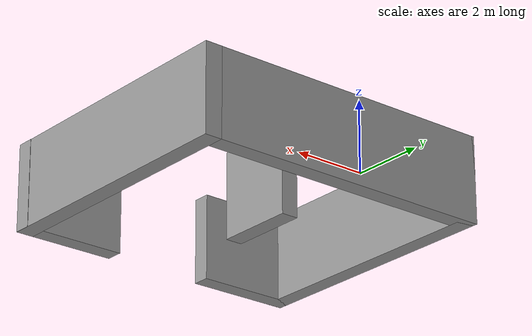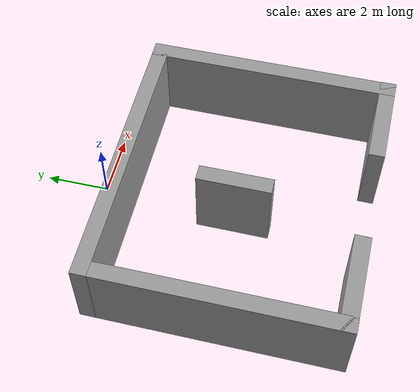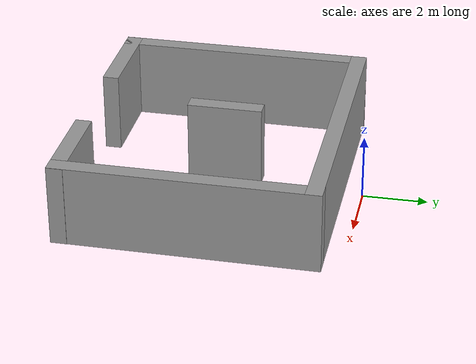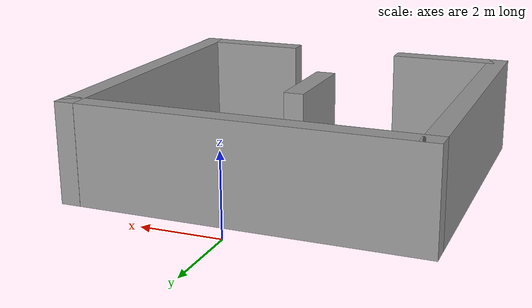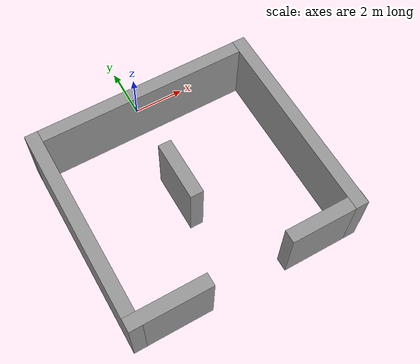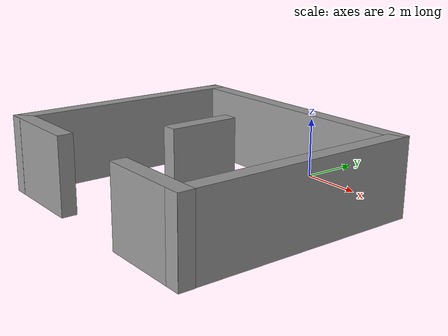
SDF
<?xml version='1.0'?>
<sdf version='1.4'>
  <model name='laser_model'>
    <link name='Wall_0'>
      <collision name='Wall_0_Collision'>
        <geometry>
          <box>
            <size>9 0.5 2.5</size>
          </box>
        </geometry>
        <pose>0 0 1.25 0 -0 0</pose>
      </collision>
      <visual name='Wall_0_Visual'>
        <pose>0 0 1.25 0 -0 0</pose>
        <geometry>
          <box>
            <size>9 0.5 2.5</size>
          </box>
        </geometry>
        <material>
          <script>
            <uri>file://media/materials/scripts/gazebo.material</uri>
            <name>Gazebo/Grey</name>
          </script>
        </material>
      </visual>
      <velocity_decay>
        <linear>0</linear>
        <angular>0</angular>
      </velocity_decay>
      <pose>-0.05 -0.82 0 0 -0 0</pose>
    </link>
    <link name='Wall_11'>
      <collision name='Wall_11_Collision'>
        <geometry>
          <box>
            <size>3 0.5 2.5</size>
          </box>
        </geometry>
        <pose>0 0 1.25 0 -0 0</pose>
      </collision>
      <visual name='Wall_11_Visual'>
        <pose>0 0 1.25 0 -0 0</pose>
        <geometry>
          <box>
            <size>3 0.5 2.5</size>
          </box>
        </geometry>
        <material>
          <script>
            <uri>file://media/materials/scripts/gazebo.material</uri>
            <name>Gazebo/Grey</name>
          </script>
        </material>
      </visual>
      <velocity_decay>
        <linear>0</linear>
        <angular>0</angular>
      </velocity_decay>
      <pose>2.96127 -8.31658 0 0 -0 0</pose>
    </link>
    <link name='Wall_13'>
      <collision name='Wall_13_Collision'>
        <geometry>
          <box>
            <size>2.309 0.5 2.5</size>
          </box>
        </geometry>
        <pose>0 0 1.25 0 -0 0</pose>
      </collision>
      <visual name='Wall_13_Visual'>
        <pose>0 0 1.25 0 -0 0</pose>
        <geometry>
          <box>
            <size>2.309 0.5 2.5</size>
          </box>
        </geometry>
        <material>
          <script>
            <uri>file://media/materials/scripts/gazebo.material</uri>
            <name>Gazebo/Grey</name>
          </script>
        </material>
      </visual>
      <velocity_decay>
        <linear>0</linear>
        <angular>0</angular>
      </velocity_decay>
      <pose>-0.385023 -4.34382 0 0 0 -1.5708</pose>
    </link>
    <link name='Wall_2'>
      <collision name='Wall_2_Collision'>
        <geometry>
          <box>
            <size>8 0.5 2.5</size>
          </box>
        </geometry>
        <pose>0 0 1.25 0 -0 0</pose>
      </collision>
      <visual name='Wall_2_Visual'>
        <pose>0 0 1.25 0 -0 0</pose>
        <geometry>
          <box>
            <size>8 0.5 2.5</size>
          </box>
        </geometry>
        <material>
          <script>
            <uri>file://media/materials/scripts/gazebo.material</uri>
            <name>Gazebo/Grey</name>
          </script>
        </material>
      </visual>
      <velocity_decay>
        <linear>0</linear>
        <angular>0</angular>
      </velocity_decay>
      <pose>-4.3 -4.57 0 0 0 -1.5708</pose>
    </link>
    <link name='Wall_7'>
      <collision name='Wall_7_Collision'>
        <geometry>
          <box>
            <size>8 0.5 2.5</size>
          </box>
        </geometry>
        <pose>0 0 1.25 0 -0 0</pose>
      </collision>
      <visual name='Wall_7_Visual'>
        <pose>0 0 1.25 0 -0 0</pose>
        <geometry>
          <box>
            <size>8 0.5 2.5</size>
          </box>
        </geometry>
        <material>
          <script>
            <uri>file://media/materials/scripts/gazebo.material</uri>
            <name>Gazebo/Grey</name>
          </script>
        </material>
      </visual>
      <velocity_decay>
        <linear>0</linear>
        <angular>0</angular>
      </velocity_decay>
      <pose>4.20127 -4.56705 0 0 0 -1.5708</pose>
    </link>
    <link name='Wall_9'>
      <collision name='Wall_9_Collision'>
        <geometry>
          <box>
            <size>3.064 0.5 2.5</size>
          </box>
        </geometry>
        <pose>0 0 1.25 0 -0 0</pose>
      </collision>
      <visual name='Wall_9_Visual'>
        <pose>0 0 1.25 0 -0 0</pose>
        <geometry>
          <box>
            <size>3.064 0.5 2.5</size>
          </box>
        </geometry>
        <material>
          <script>
            <uri>file://media/materials/scripts/gazebo.material</uri>
            <name>Gazebo/Grey</name>
          </script>
        </material>
      </visual>
      <velocity_decay>
        <linear>0</linear>
        <angular>0</angular>
      </velocity_decay>
      <pose>-3.01359 -8.31674 0 0 -0 0</pose>
    </link>
    <static>1</static>
  </model>
</sdf>
